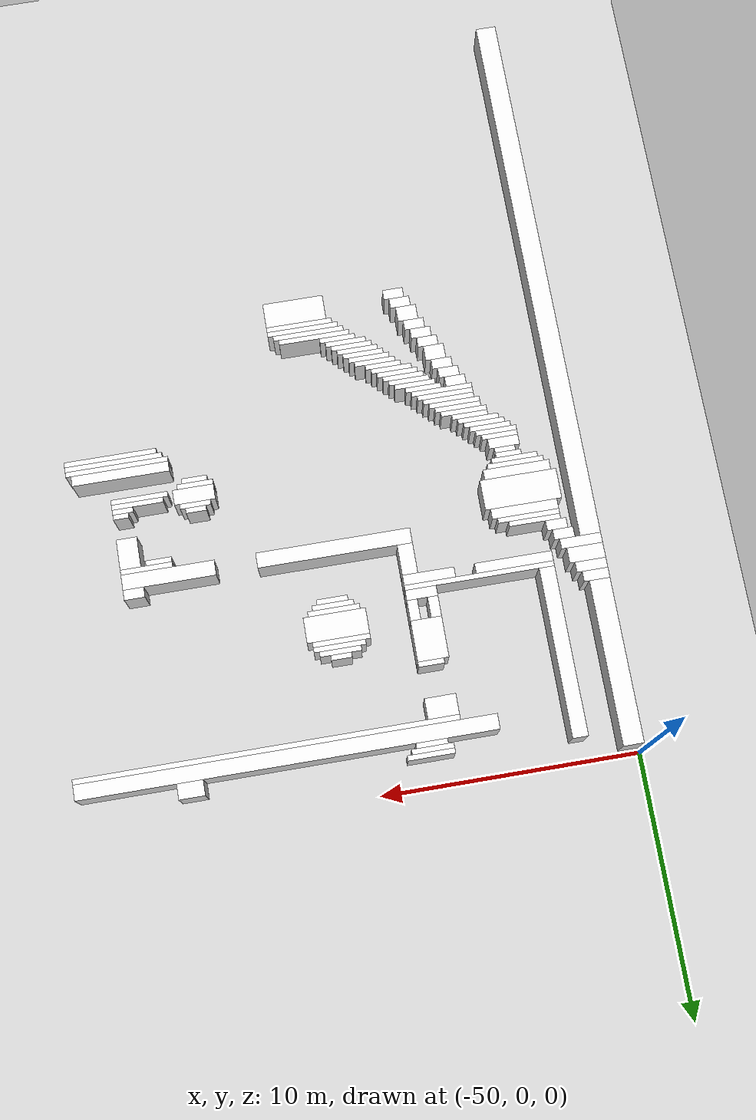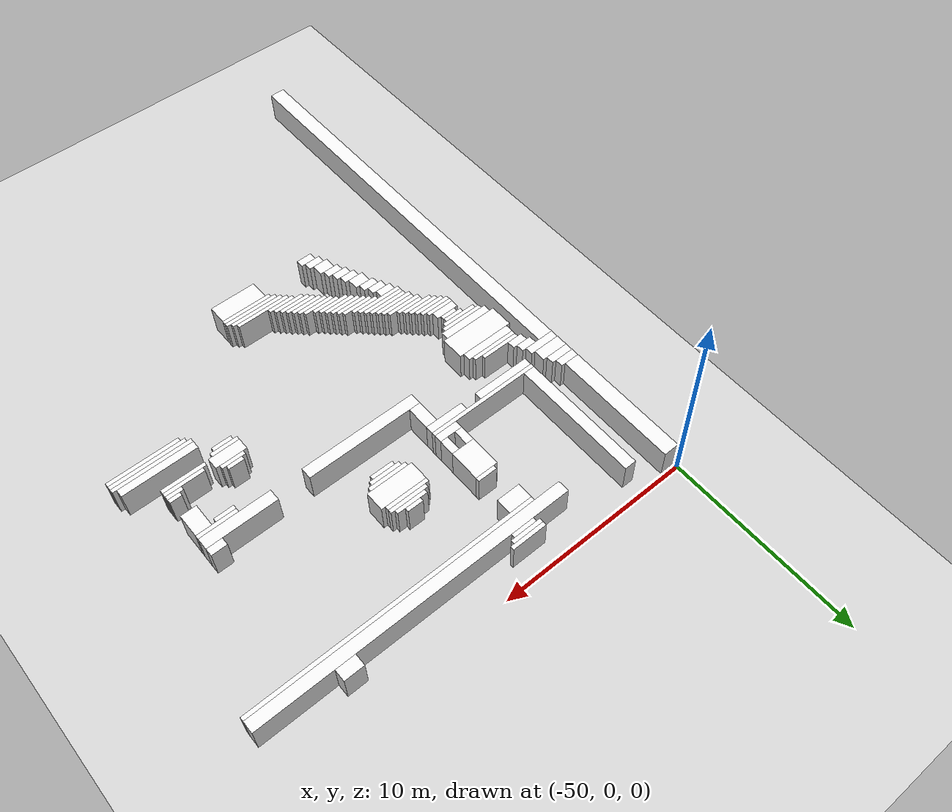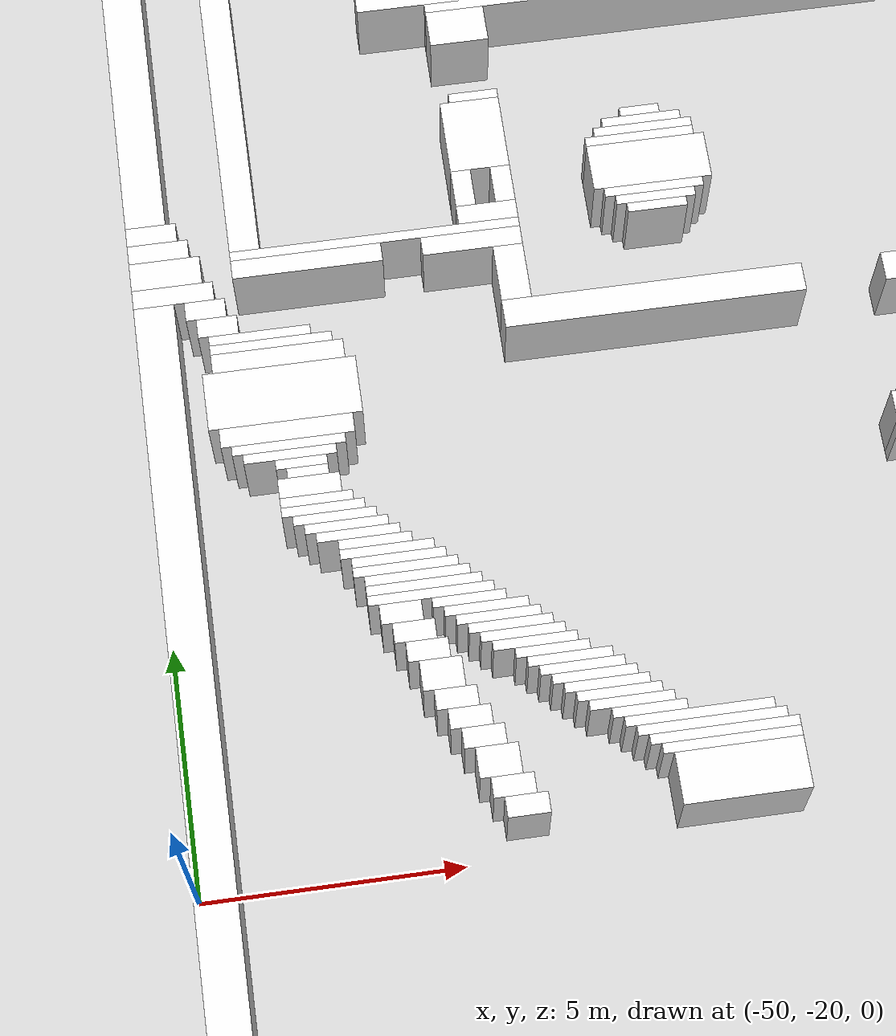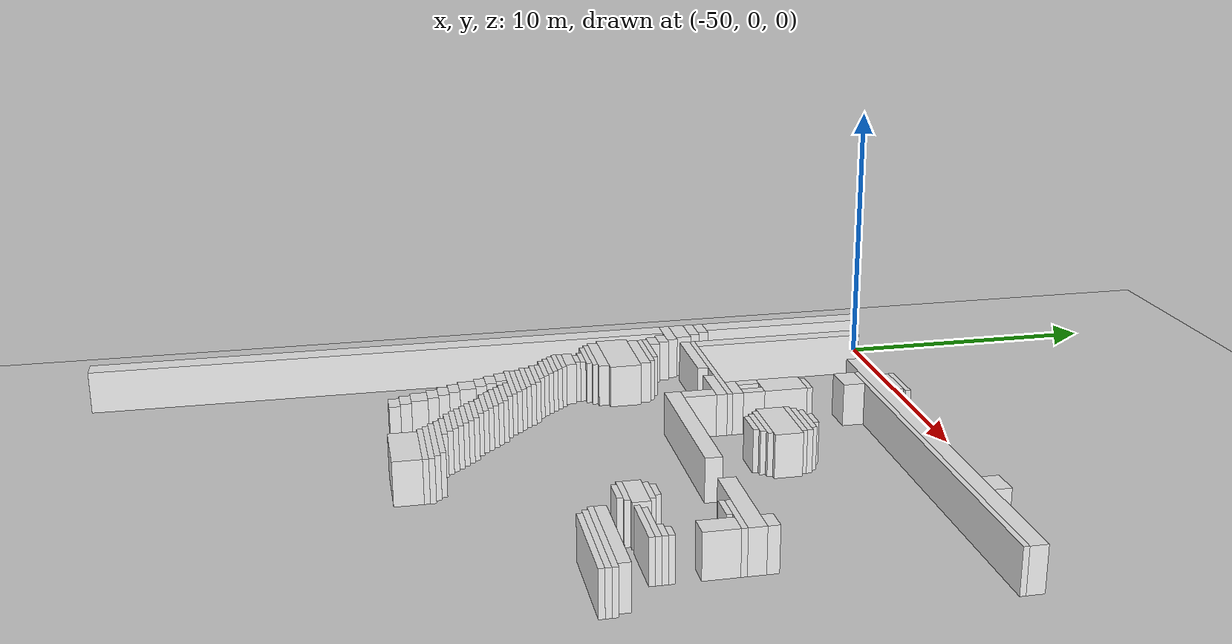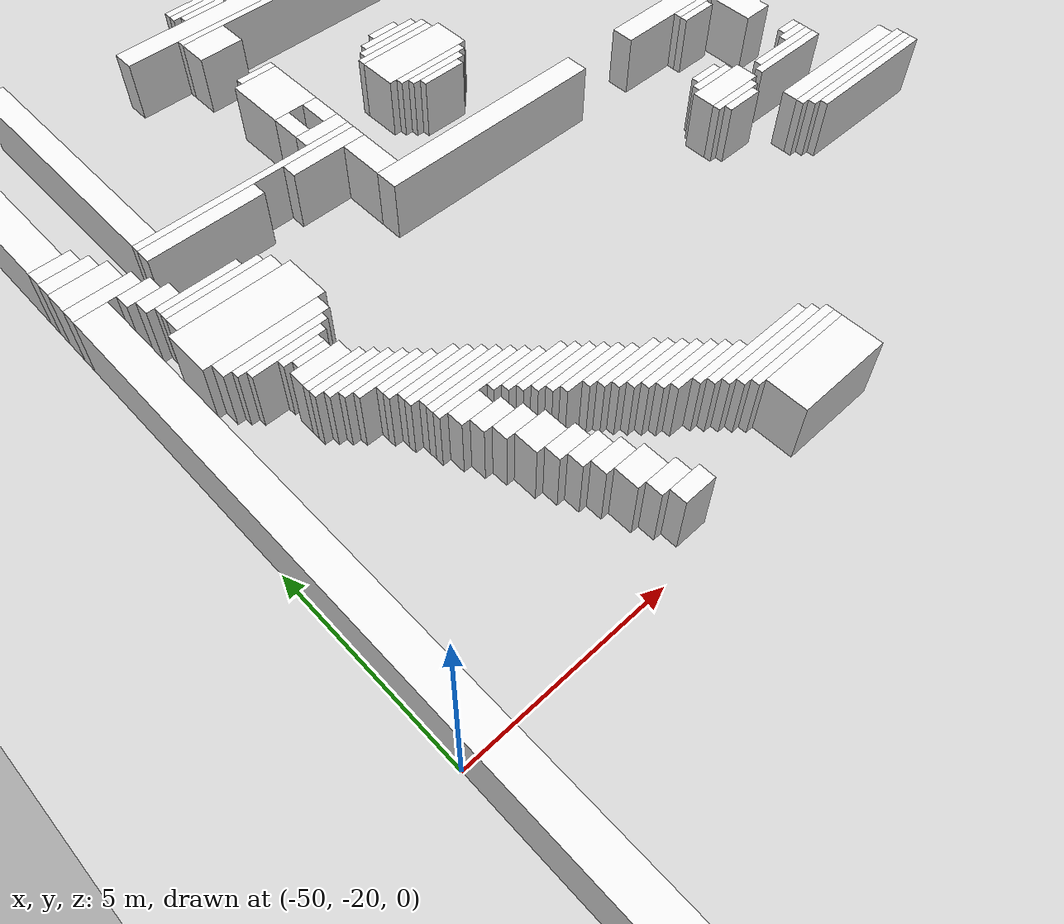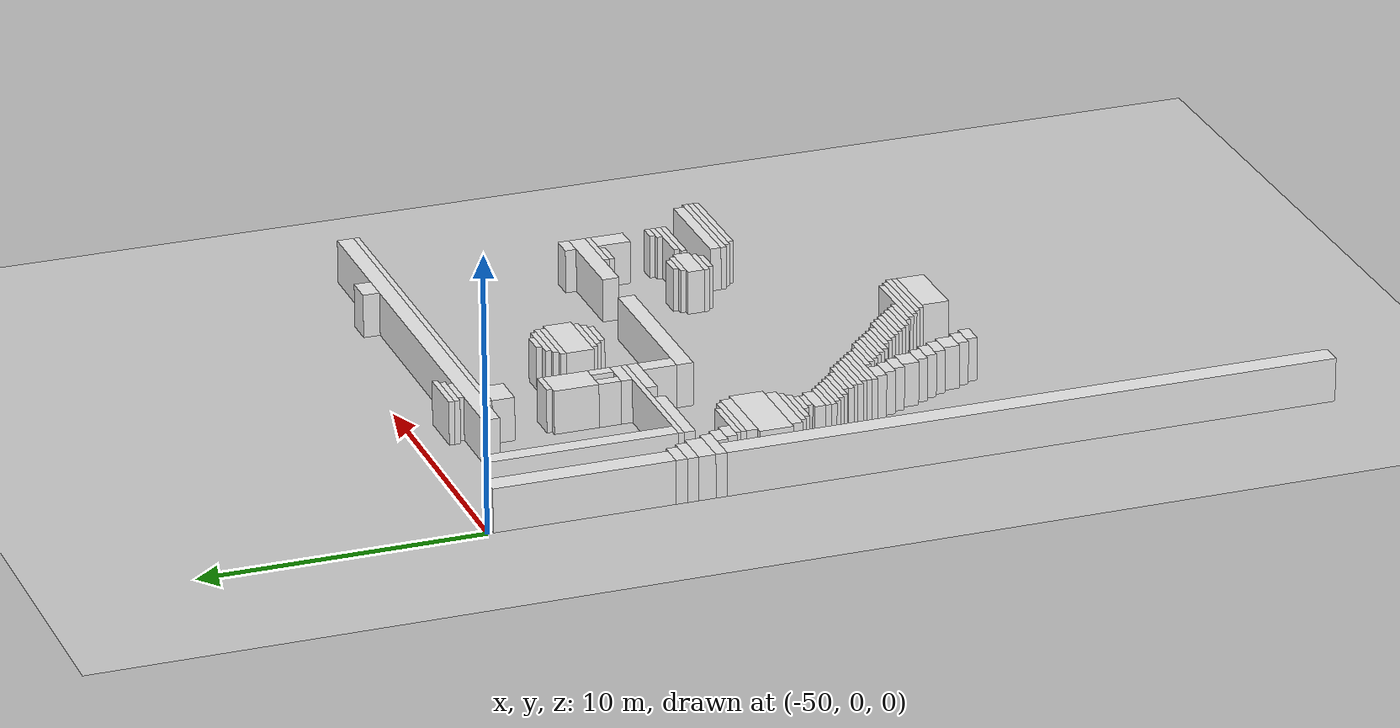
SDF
<sdf version="1.7">
 <world name="default">
  <model name="ground_plane">
   <static>1</static>
   <link name="link">
    <collision name="collision">
     <geometry><plane><normal>0 0 1</normal><size>120 120</size></plane></geometry>
    </collision>
    <visual name="visual">
     <geometry><plane><normal>0 0 1</normal><size>120 120</size></plane></geometry>
     <material>
      <script><uri>file://media/materials/scripts/gazebo.material</uri><name>Gazebo/Grey</name></script>
     </material>
    </visual>
   </link>
  </model>
  <model name="random_complex_03_model">
   <static>1</static>
   <link name="obs_1675">
    <pose>-42.1000 -1.1000 0.8000 0 0 0</pose>
    <collision name="obs_1675_col"><geometry><box><size>1.8000 0.2000 1.6000</size></box></geometry></collision>
    <visual name="obs_1675_vis">
     <geometry><box><size>1.8000 0.2000 1.6000</size></box></geometry>
     <material>
      <script><uri>file://media/materials/scripts/gazebo.material</uri><name>Gazebo/White</name></script>
     </material>
    </visual>
   </link>
   <link name="obs_1685">
    <pose>-42.2000 -1.3000 0.8000 0 0 0</pose>
    <collision name="obs_1685_col"><geometry><box><size>1.6000 0.2000 1.6000</size></box></geometry></collision>
    <visual name="obs_1685_vis">
     <geometry><box><size>1.6000 0.2000 1.6000</size></box></geometry>
     <material>
      <script><uri>file://media/materials/scripts/gazebo.material</uri><name>Gazebo/White</name></script>
     </material>
    </visual>
   </link>
   <link name="obs_1694">
    <pose>-33.1000 -1.3000 0.8000 0 0 0</pose>
    <collision name="obs_1694_col"><geometry><box><size>1.0000 0.6000 1.6000</size></box></geometry></collision>
    <visual name="obs_1694_vis">
     <geometry><box><size>1.0000 0.6000 1.6000</size></box></geometry>
     <material>
      <script><uri>file://media/materials/scripts/gazebo.material</uri><name>Gazebo/White</name></script>
     </material>
    </visual>
   </link>
   <link name="obs_1697">
    <pose>-42.2000 -1.5000 0.8000 0 0 0</pose>
    <collision name="obs_1697_col"><geometry><box><size>1.2000 0.2000 1.6000</size></box></geometry></collision>
    <visual name="obs_1697_vis">
     <geometry><box><size>1.2000 0.2000 1.6000</size></box></geometry>
     <material>
      <script><uri>file://media/materials/scripts/gazebo.material</uri><name>Gazebo/White</name></script>
     </material>
    </visual>
   </link>
   <link name="obs_1722">
    <pose>-36.8000 -1.9000 0.8000 0 0 0</pose>
    <collision name="obs_1722_col"><geometry><box><size>16.0000 0.6000 1.6000</size></box></geometry></collision>
    <visual name="obs_1722_vis">
     <geometry><box><size>16.0000 0.6000 1.6000</size></box></geometry>
     <material>
      <script><uri>file://media/materials/scripts/gazebo.material</uri><name>Gazebo/White</name></script>
     </material>
    </visual>
   </link>
   <link name="obs_1733">
    <pose>-36.1000 -2.3000 0.8000 0 0 0</pose>
    <collision name="obs_1733_col"><geometry><box><size>14.6000 0.2000 1.6000</size></box></geometry></collision>
    <visual name="obs_1733_vis">
     <geometry><box><size>14.6000 0.2000 1.6000</size></box></geometry>
     <material>
      <script><uri>file://media/materials/scripts/gazebo.material</uri><name>Gazebo/White</name></script>
     </material>
    </visual>
   </link>
   <link name="obs_1763">
    <pose>-42.8000 -2.8000 0.8000 0 0 0</pose>
    <collision name="obs_1763_col"><geometry><box><size>1.2000 0.8000 1.6000</size></box></geometry></collision>
    <visual name="obs_1763_vis">
     <geometry><box><size>1.2000 0.8000 1.6000</size></box></geometry>
     <material>
      <script><uri>file://media/materials/scripts/gazebo.material</uri><name>Gazebo/White</name></script>
     </material>
    </visual>
   </link>
   <link name="obs_1791">
    <pose>-42.7000 -4.5000 0.8000 0 0 0</pose>
    <collision name="obs_1791_col"><geometry><box><size>1.0000 0.2000 1.6000</size></box></geometry></collision>
    <visual name="obs_1791_vis">
     <geometry><box><size>1.0000 0.2000 1.6000</size></box></geometry>
     <material>
      <script><uri>file://media/materials/scripts/gazebo.material</uri><name>Gazebo/White</name></script>
     </material>
    </visual>
   </link>
   <link name="obs_1819">
    <pose>-39.4000 -5.3000 0.8000 0 0 0</pose>
    <collision name="obs_1819_col"><geometry><box><size>0.8000 0.2000 1.6000</size></box></geometry></collision>
    <visual name="obs_1819_vis">
     <geometry><box><size>0.8000 0.2000 1.6000</size></box></geometry>
     <material>
      <script><uri>file://media/materials/scripts/gazebo.material</uri><name>Gazebo/White</name></script>
     </material>
    </visual>
   </link>
   <link name="obs_1821">
    <pose>-39.4000 -5.5000 0.8000 0 0 0</pose>
    <collision name="obs_1821_col"><geometry><box><size>1.6000 0.2000 1.6000</size></box></geometry></collision>
    <visual name="obs_1821_vis">
     <geometry><box><size>1.6000 0.2000 1.6000</size></box></geometry>
     <material>
      <script><uri>file://media/materials/scripts/gazebo.material</uri><name>Gazebo/White</name></script>
     </material>
    </visual>
   </link>
   <link name="obs_1826">
    <pose>-39.4000 -5.7000 0.8000 0 0 0</pose>
    <collision name="obs_1826_col"><geometry><box><size>2.0000 0.2000 1.6000</size></box></geometry></collision>
    <visual name="obs_1826_vis">
     <geometry><box><size>2.0000 0.2000 1.6000</size></box></geometry>
     <material>
      <script><uri>file://media/materials/scripts/gazebo.material</uri><name>Gazebo/White</name></script>
     </material>
    </visual>
   </link>
   <link name="obs_1831">
    <pose>-39.5000 -5.9000 0.8000 0 0 0</pose>
    <collision name="obs_1831_col"><geometry><box><size>2.2000 0.2000 1.6000</size></box></geometry></collision>
    <visual name="obs_1831_vis">
     <geometry><box><size>2.2000 0.2000 1.6000</size></box></geometry>
     <material>
      <script><uri>file://media/materials/scripts/gazebo.material</uri><name>Gazebo/White</name></script>
     </material>
    </visual>
   </link>
   <link name="obs_1834">
    <pose>-42.8000 -5.4000 0.8000 0 0 0</pose>
    <collision name="obs_1834_col"><geometry><box><size>1.2000 1.6000 1.6000</size></box></geometry></collision>
    <visual name="obs_1834_vis">
     <geometry><box><size>1.2000 1.6000 1.6000</size></box></geometry>
     <material>
      <script><uri>file://media/materials/scripts/gazebo.material</uri><name>Gazebo/White</name></script>
     </material>
    </visual>
   </link>
   <link name="obs_1840">
    <pose>-49.6000 -3.4000 0.8000 0 0 0</pose>
    <collision name="obs_1840_col"><geometry><box><size>0.8000 6.4000 1.6000</size></box></geometry></collision>
    <visual name="obs_1840_vis">
     <geometry><box><size>0.8000 6.4000 1.6000</size></box></geometry>
     <material>
      <script><uri>file://media/materials/scripts/gazebo.material</uri><name>Gazebo/White</name></script>
     </material>
    </visual>
   </link>
   <link name="obs_1850">
    <pose>-39.4000 -6.5000 0.8000 0 0 0</pose>
    <collision name="obs_1850_col"><geometry><box><size>2.4000 1.0000 1.6000</size></box></geometry></collision>
    <visual name="obs_1850_vis">
     <geometry><box><size>2.4000 1.0000 1.6000</size></box></geometry>
     <material>
      <script><uri>file://media/materials/scripts/gazebo.material</uri><name>Gazebo/White</name></script>
     </material>
    </visual>
   </link>
   <link name="obs_1851">
    <pose>-43.2000 -6.6000 0.8000 0 0 0</pose>
    <collision name="obs_1851_col"><geometry><box><size>0.4000 0.8000 1.6000</size></box></geometry></collision>
    <visual name="obs_1851_vis">
     <geometry><box><size>0.4000 0.8000 1.6000</size></box></geometry>
     <material>
      <script><uri>file://media/materials/scripts/gazebo.material</uri><name>Gazebo/White</name></script>
     </material>
    </visual>
   </link>
   <link name="obs_1852">
    <pose>-42.4000 -6.6000 0.8000 0 0 0</pose>
    <collision name="obs_1852_col"><geometry><box><size>0.4000 0.8000 1.6000</size></box></geometry></collision>
    <visual name="obs_1852_vis">
     <geometry><box><size>0.4000 0.8000 1.6000</size></box></geometry>
     <material>
      <script><uri>file://media/materials/scripts/gazebo.material</uri><name>Gazebo/White</name></script>
     </material>
    </visual>
   </link>
   <link name="obs_1853">
    <pose>-49.5000 -6.8000 0.8000 0 0 0</pose>
    <collision name="obs_1853_col"><geometry><box><size>1.0000 0.4000 1.6000</size></box></geometry></collision>
    <visual name="obs_1853_vis">
     <geometry><box><size>1.0000 0.4000 1.6000</size></box></geometry>
     <material>
      <script><uri>file://media/materials/scripts/gazebo.material</uri><name>Gazebo/White</name></script>
     </material>
    </visual>
   </link>
   <link name="obs_1859">
    <pose>-39.4000 -7.1000 0.8000 0 0 0</pose>
    <collision name="obs_1859_col"><geometry><box><size>2.0000 0.2000 1.6000</size></box></geometry></collision>
    <visual name="obs_1859_vis">
     <geometry><box><size>2.0000 0.2000 1.6000</size></box></geometry>
     <material>
      <script><uri>file://media/materials/scripts/gazebo.material</uri><name>Gazebo/White</name></script>
     </material>
    </visual>
   </link>
   <link name="obs_1861">
    <pose>-47.7000 -4.1000 0.8000 0 0 0</pose>
    <collision name="obs_1861_col"><geometry><box><size>0.6000 6.6000 1.6000</size></box></geometry></collision>
    <visual name="obs_1861_vis">
     <geometry><box><size>0.6000 6.6000 1.6000</size></box></geometry>
     <material>
      <script><uri>file://media/materials/scripts/gazebo.material</uri><name>Gazebo/White</name></script>
     </material>
    </visual>
   </link>
   <link name="obs_1862">
    <pose>-49.4000 -7.2000 0.8000 0 0 0</pose>
    <collision name="obs_1862_col"><geometry><box><size>1.2000 0.4000 1.6000</size></box></geometry></collision>
    <visual name="obs_1862_vis">
     <geometry><box><size>1.2000 0.4000 1.6000</size></box></geometry>
     <material>
      <script><uri>file://media/materials/scripts/gazebo.material</uri><name>Gazebo/White</name></script>
     </material>
    </visual>
   </link>
   <link name="obs_1863">
    <pose>-42.8000 -7.2000 0.8000 0 0 0</pose>
    <collision name="obs_1863_col"><geometry><box><size>1.2000 0.4000 1.6000</size></box></geometry></collision>
    <visual name="obs_1863_vis">
     <geometry><box><size>1.2000 0.4000 1.6000</size></box></geometry>
     <material>
      <script><uri>file://media/materials/scripts/gazebo.material</uri><name>Gazebo/White</name></script>
     </material>
    </visual>
   </link>
   <link name="obs_1867">
    <pose>-39.4000 -7.3000 0.8000 0 0 0</pose>
    <collision name="obs_1867_col"><geometry><box><size>1.6000 0.2000 1.6000</size></box></geometry></collision>
    <visual name="obs_1867_vis">
     <geometry><box><size>1.6000 0.2000 1.6000</size></box></geometry>
     <material>
      <script><uri>file://media/materials/scripts/gazebo.material</uri><name>Gazebo/White</name></script>
     </material>
    </visual>
   </link>
   <link name="obs_1870">
    <pose>-45.1000 -7.5000 0.8000 0 0 0</pose>
    <collision name="obs_1870_col"><geometry><box><size>5.8000 0.2000 1.6000</size></box></geometry></collision>
    <visual name="obs_1870_vis">
     <geometry><box><size>5.8000 0.2000 1.6000</size></box></geometry>
     <material>
      <script><uri>file://media/materials/scripts/gazebo.material</uri><name>Gazebo/White</name></script>
     </material>
    </visual>
   </link>
   <link name="obs_1871">
    <pose>-39.4000 -7.5000 0.8000 0 0 0</pose>
    <collision name="obs_1871_col"><geometry><box><size>1.2000 0.2000 1.6000</size></box></geometry></collision>
    <visual name="obs_1871_vis">
     <geometry><box><size>1.2000 0.2000 1.6000</size></box></geometry>
     <material>
      <script><uri>file://media/materials/scripts/gazebo.material</uri><name>Gazebo/White</name></script>
     </material>
    </visual>
   </link>
   <link name="obs_1883">
    <pose>-49.3000 -7.7000 0.8000 0 0 0</pose>
    <collision name="obs_1883_col"><geometry><box><size>1.4000 0.6000 1.6000</size></box></geometry></collision>
    <visual name="obs_1883_vis">
     <geometry><box><size>1.4000 0.6000 1.6000</size></box></geometry>
     <material>
      <script><uri>file://media/materials/scripts/gazebo.material</uri><name>Gazebo/White</name></script>
     </material>
    </visual>
   </link>
   <link name="obs_1884">
    <pose>-46.5000 -7.8000 0.8000 0 0 0</pose>
    <collision name="obs_1884_col"><geometry><box><size>3.0000 0.4000 1.6000</size></box></geometry></collision>
    <visual name="obs_1884_vis">
     <geometry><box><size>3.0000 0.4000 1.6000</size></box></geometry>
     <material>
      <script><uri>file://media/materials/scripts/gazebo.material</uri><name>Gazebo/White</name></script>
     </material>
    </visual>
   </link>
   <link name="obs_1885">
    <pose>-43.2000 -7.8000 0.8000 0 0 0</pose>
    <collision name="obs_1885_col"><geometry><box><size>2.0000 0.4000 1.6000</size></box></geometry></collision>
    <visual name="obs_1885_vis">
     <geometry><box><size>2.0000 0.4000 1.6000</size></box></geometry>
     <material>
      <script><uri>file://media/materials/scripts/gazebo.material</uri><name>Gazebo/White</name></script>
     </material>
    </visual>
   </link>
   <link name="obs_1896">
    <pose>-49.2000 -8.2000 0.8000 0 0 0</pose>
    <collision name="obs_1896_col"><geometry><box><size>1.6000 0.4000 1.6000</size></box></geometry></collision>
    <visual name="obs_1896_vis">
     <geometry><box><size>1.6000 0.4000 1.6000</size></box></geometry>
     <material>
      <script><uri>file://media/materials/scripts/gazebo.material</uri><name>Gazebo/White</name></script>
     </material>
    </visual>
   </link>
   <link name="obs_1909">
    <pose>-48.6000 -8.6000 0.8000 0 0 0</pose>
    <collision name="obs_1909_col"><geometry><box><size>0.8000 0.4000 1.6000</size></box></geometry></collision>
    <visual name="obs_1909_vis">
     <geometry><box><size>0.8000 0.4000 1.6000</size></box></geometry>
     <material>
      <script><uri>file://media/materials/scripts/gazebo.material</uri><name>Gazebo/White</name></script>
     </material>
    </visual>
   </link>
   <link name="obs_1920">
    <pose>-42.5000 -8.6000 0.8000 0 0 0</pose>
    <collision name="obs_1920_col"><geometry><box><size>0.6000 1.2000 1.6000</size></box></geometry></collision>
    <visual name="obs_1920_vis">
     <geometry><box><size>0.6000 1.2000 1.6000</size></box></geometry>
     <material>
      <script><uri>file://media/materials/scripts/gazebo.material</uri><name>Gazebo/White</name></script>
     </material>
    </visual>
   </link>
   <link name="obs_1921">
    <pose>-48.4000 -9.0000 0.8000 0 0 0</pose>
    <collision name="obs_1921_col"><geometry><box><size>0.8000 0.4000 1.6000</size></box></geometry></collision>
    <visual name="obs_1921_vis">
     <geometry><box><size>0.8000 0.4000 1.6000</size></box></geometry>
     <material>
      <script><uri>file://media/materials/scripts/gazebo.material</uri><name>Gazebo/White</name></script>
     </material>
    </visual>
   </link>
   <link name="obs_1922">
    <pose>-32.0000 -9.0000 0.8000 0 0 0</pose>
    <collision name="obs_1922_col"><geometry><box><size>0.8000 0.4000 1.6000</size></box></geometry></collision>
    <visual name="obs_1922_vis">
     <geometry><box><size>0.8000 0.4000 1.6000</size></box></geometry>
     <material>
      <script><uri>file://media/materials/scripts/gazebo.material</uri><name>Gazebo/White</name></script>
     </material>
    </visual>
   </link>
   <link name="obs_1932">
    <pose>-47.6000 -9.3000 0.8000 0 0 0</pose>
    <collision name="obs_1932_col"><geometry><box><size>2.0000 0.2000 1.6000</size></box></geometry></collision>
    <visual name="obs_1932_vis">
     <geometry><box><size>2.0000 0.2000 1.6000</size></box></geometry>
     <material>
      <script><uri>file://media/materials/scripts/gazebo.material</uri><name>Gazebo/White</name></script>
     </material>
    </visual>
   </link>
   <link name="obs_1940">
    <pose>-47.4000 -9.5000 0.8000 0 0 0</pose>
    <collision name="obs_1940_col"><geometry><box><size>2.4000 0.2000 1.6000</size></box></geometry></collision>
    <visual name="obs_1940_vis">
     <geometry><box><size>2.4000 0.2000 1.6000</size></box></geometry>
     <material>
      <script><uri>file://media/materials/scripts/gazebo.material</uri><name>Gazebo/White</name></script>
     </material>
    </visual>
   </link>
   <link name="obs_1946">
    <pose>-39.8000 -9.5000 0.8000 0 0 0</pose>
    <collision name="obs_1946_col"><geometry><box><size>6.0000 0.6000 1.6000</size></box></geometry></collision>
    <visual name="obs_1946_vis">
     <geometry><box><size>6.0000 0.6000 1.6000</size></box></geometry>
     <material>
      <script><uri>file://media/materials/scripts/gazebo.material</uri><name>Gazebo/White</name></script>
     </material>
    </visual>
   </link>
   <link name="obs_1947">
    <pose>-33.4000 -9.5000 0.8000 0 0 0</pose>
    <collision name="obs_1947_col"><geometry><box><size>3.6000 0.6000 1.6000</size></box></geometry></collision>
    <visual name="obs_1947_vis">
     <geometry><box><size>3.6000 0.6000 1.6000</size></box></geometry>
     <material>
      <script><uri>file://media/materials/scripts/gazebo.material</uri><name>Gazebo/White</name></script>
     </material>
    </visual>
   </link>
   <link name="obs_1953">
    <pose>-47.3000 -9.8000 0.8000 0 0 0</pose>
    <collision name="obs_1953_col"><geometry><box><size>2.6000 0.4000 1.6000</size></box></geometry></collision>
    <visual name="obs_1953_vis">
     <geometry><box><size>2.6000 0.4000 1.6000</size></box></geometry>
     <material>
      <script><uri>file://media/materials/scripts/gazebo.material</uri><name>Gazebo/White</name></script>
     </material>
    </visual>
   </link>
   <link name="obs_1955">
    <pose>-32.6000 -9.9000 0.8000 0 0 0</pose>
    <collision name="obs_1955_col"><geometry><box><size>2.0000 0.2000 1.6000</size></box></geometry></collision>
    <visual name="obs_1955_vis">
     <geometry><box><size>2.0000 0.2000 1.6000</size></box></geometry>
     <material>
      <script><uri>file://media/materials/scripts/gazebo.material</uri><name>Gazebo/White</name></script>
     </material>
    </visual>
   </link>
   <link name="obs_1965">
    <pose>-33.1000 -10.1000 0.8000 0 0 0</pose>
    <collision name="obs_1965_col"><geometry><box><size>1.0000 0.2000 1.6000</size></box></geometry></collision>
    <visual name="obs_1965_vis">
     <geometry><box><size>1.0000 0.2000 1.6000</size></box></geometry>
     <material>
      <script><uri>file://media/materials/scripts/gazebo.material</uri><name>Gazebo/White</name></script>
     </material>
    </visual>
   </link>
   <link name="obs_1983">
    <pose>-47.3000 -10.6000 0.8000 0 0 0</pose>
    <collision name="obs_1983_col"><geometry><box><size>3.0000 1.2000 1.6000</size></box></geometry></collision>
    <visual name="obs_1983_vis">
     <geometry><box><size>3.0000 1.2000 1.6000</size></box></geometry>
     <material>
      <script><uri>file://media/materials/scripts/gazebo.material</uri><name>Gazebo/White</name></script>
     </material>
    </visual>
   </link>
   <link name="obs_1984">
    <pose>-32.0000 -10.6000 0.8000 0 0 0</pose>
    <collision name="obs_1984_col"><geometry><box><size>0.8000 1.2000 1.6000</size></box></geometry></collision>
    <visual name="obs_1984_vis">
     <geometry><box><size>0.8000 1.2000 1.6000</size></box></geometry>
     <material>
      <script><uri>file://media/materials/scripts/gazebo.material</uri><name>Gazebo/White</name></script>
     </material>
    </visual>
   </link>
   <link name="obs_1988">
    <pose>-47.3000 -11.4000 0.8000 0 0 0</pose>
    <collision name="obs_1988_col"><geometry><box><size>2.6000 0.4000 1.6000</size></box></geometry></collision>
    <visual name="obs_1988_vis">
     <geometry><box><size>2.6000 0.4000 1.6000</size></box></geometry>
     <material>
      <script><uri>file://media/materials/scripts/gazebo.material</uri><name>Gazebo/White</name></script>
     </material>
    </visual>
   </link>
   <link name="obs_1990">
    <pose>-47.3000 -11.7000 0.8000 0 0 0</pose>
    <collision name="obs_1990_col"><geometry><box><size>2.2000 0.2000 1.6000</size></box></geometry></collision>
    <visual name="obs_1990_vis">
     <geometry><box><size>2.2000 0.2000 1.6000</size></box></geometry>
     <material>
      <script><uri>file://media/materials/scripts/gazebo.material</uri><name>Gazebo/White</name></script>
     </material>
    </visual>
   </link>
   <link name="obs_2000">
    <pose>-47.3000 -11.9000 0.8000 0 0 0</pose>
    <collision name="obs_2000_col"><geometry><box><size>1.8000 0.2000 1.6000</size></box></geometry></collision>
    <visual name="obs_2000_vis">
     <geometry><box><size>1.8000 0.2000 1.6000</size></box></geometry>
     <material>
      <script><uri>file://media/materials/scripts/gazebo.material</uri><name>Gazebo/White</name></script>
     </material>
    </visual>
   </link>
   <link name="obs_2001">
    <pose>-34.8000 -11.9000 0.8000 0 0 0</pose>
    <collision name="obs_2001_col"><geometry><box><size>0.8000 0.2000 1.6000</size></box></geometry></collision>
    <visual name="obs_2001_vis">
     <geometry><box><size>0.8000 0.2000 1.6000</size></box></geometry>
     <material>
      <script><uri>file://media/materials/scripts/gazebo.material</uri><name>Gazebo/White</name></script>
     </material>
    </visual>
   </link>
   <link name="obs_2007">
    <pose>-47.1000 -12.1000 0.8000 0 0 0</pose>
    <collision name="obs_2007_col"><geometry><box><size>1.0000 0.2000 1.6000</size></box></geometry></collision>
    <visual name="obs_2007_vis">
     <geometry><box><size>1.0000 0.2000 1.6000</size></box></geometry>
     <material>
      <script><uri>file://media/materials/scripts/gazebo.material</uri><name>Gazebo/White</name></script>
     </material>
    </visual>
   </link>
   <link name="obs_2008">
    <pose>-34.8000 -12.1000 0.8000 0 0 0</pose>
    <collision name="obs_2008_col"><geometry><box><size>1.2000 0.2000 1.6000</size></box></geometry></collision>
    <visual name="obs_2008_vis">
     <geometry><box><size>1.2000 0.2000 1.6000</size></box></geometry>
     <material>
      <script><uri>file://media/materials/scripts/gazebo.material</uri><name>Gazebo/White</name></script>
     </material>
    </visual>
   </link>
   <link name="obs_2009">
    <pose>-31.9000 -12.1000 0.8000 0 0 0</pose>
    <collision name="obs_2009_col"><geometry><box><size>0.6000 0.2000 1.6000</size></box></geometry></collision>
    <visual name="obs_2009_vis">
     <geometry><box><size>0.6000 0.2000 1.6000</size></box></geometry>
     <material>
      <script><uri>file://media/materials/scripts/gazebo.material</uri><name>Gazebo/White</name></script>
     </material>
    </visual>
   </link>
   <link name="obs_2016">
    <pose>-47.0000 -12.3000 0.8000 0 0 0</pose>
    <collision name="obs_2016_col"><geometry><box><size>0.8000 0.2000 1.6000</size></box></geometry></collision>
    <visual name="obs_2016_vis">
     <geometry><box><size>0.8000 0.2000 1.6000</size></box></geometry>
     <material>
      <script><uri>file://media/materials/scripts/gazebo.material</uri><name>Gazebo/White</name></script>
     </material>
    </visual>
   </link>
   <link name="obs_2017">
    <pose>-32.0000 -12.3000 0.8000 0 0 0</pose>
    <collision name="obs_2017_col"><geometry><box><size>0.8000 0.2000 1.6000</size></box></geometry></collision>
    <visual name="obs_2017_vis">
     <geometry><box><size>0.8000 0.2000 1.6000</size></box></geometry>
     <material>
      <script><uri>file://media/materials/scripts/gazebo.material</uri><name>Gazebo/White</name></script>
     </material>
    </visual>
   </link>
   <link name="obs_2025">
    <pose>-32.6000 -12.5000 0.8000 0 0 0</pose>
    <collision name="obs_2025_col"><geometry><box><size>2.0000 0.2000 1.6000</size></box></geometry></collision>
    <visual name="obs_2025_vis">
     <geometry><box><size>2.0000 0.2000 1.6000</size></box></geometry>
     <material>
      <script><uri>file://media/materials/scripts/gazebo.material</uri><name>Gazebo/White</name></script>
     </material>
    </visual>
   </link>
   <link name="obs_2033">
    <pose>-34.8000 -12.5000 0.8000 0 0 0</pose>
    <collision name="obs_2033_col"><geometry><box><size>1.6000 0.6000 1.6000</size></box></geometry></collision>
    <visual name="obs_2033_vis">
     <geometry><box><size>1.6000 0.6000 1.6000</size></box></geometry>
     <material>
      <script><uri>file://media/materials/scripts/gazebo.material</uri><name>Gazebo/White</name></script>
     </material>
    </visual>
   </link>
   <link name="obs_2034">
    <pose>-47.0000 -12.6000 0.8000 0 0 0</pose>
    <collision name="obs_2034_col"><geometry><box><size>1.2000 0.4000 1.6000</size></box></geometry></collision>
    <visual name="obs_2034_vis">
     <geometry><box><size>1.2000 0.4000 1.6000</size></box></geometry>
     <material>
      <script><uri>file://media/materials/scripts/gazebo.material</uri><name>Gazebo/White</name></script>
     </material>
    </visual>
   </link>
   <link name="obs_2036">
    <pose>-32.7000 -12.7000 0.8000 0 0 0</pose>
    <collision name="obs_2036_col"><geometry><box><size>2.2000 0.2000 1.6000</size></box></geometry></collision>
    <visual name="obs_2036_vis">
     <geometry><box><size>2.2000 0.2000 1.6000</size></box></geometry>
     <material>
      <script><uri>file://media/materials/scripts/gazebo.material</uri><name>Gazebo/White</name></script>
     </material>
    </visual>
   </link>
   <link name="obs_2044">
    <pose>-46.9000 -12.9000 0.8000 0 0 0</pose>
    <collision name="obs_2044_col"><geometry><box><size>1.4000 0.2000 1.6000</size></box></geometry></collision>
    <visual name="obs_2044_vis">
     <geometry><box><size>1.4000 0.2000 1.6000</size></box></geometry>
     <material>
      <script><uri>file://media/materials/scripts/gazebo.material</uri><name>Gazebo/White</name></script>
     </material>
    </visual>
   </link>
   <link name="obs_2045">
    <pose>-34.9000 -12.9000 0.8000 0 0 0</pose>
    <collision name="obs_2045_col"><geometry><box><size>1.4000 0.2000 1.6000</size></box></geometry></collision>
    <visual name="obs_2045_vis">
     <geometry><box><size>1.4000 0.2000 1.6000</size></box></geometry>
     <material>
      <script><uri>file://media/materials/scripts/gazebo.material</uri><name>Gazebo/White</name></script>
     </material>
    </visual>
   </link>
   <link name="obs_2054">
    <pose>-46.8000 -13.1000 0.8000 0 0 0</pose>
    <collision name="obs_2054_col"><geometry><box><size>1.6000 0.2000 1.6000</size></box></geometry></collision>
    <visual name="obs_2054_vis">
     <geometry><box><size>1.6000 0.2000 1.6000</size></box></geometry>
     <material>
      <script><uri>file://media/materials/scripts/gazebo.material</uri><name>Gazebo/White</name></script>
     </material>
    </visual>
   </link>
   <link name="obs_2055">
    <pose>-34.9000 -13.1000 0.8000 0 0 0</pose>
    <collision name="obs_2055_col"><geometry><box><size>1.0000 0.2000 1.6000</size></box></geometry></collision>
    <visual name="obs_2055_vis">
     <geometry><box><size>1.0000 0.2000 1.6000</size></box></geometry>
     <material>
      <script><uri>file://media/materials/scripts/gazebo.material</uri><name>Gazebo/White</name></script>
     </material>
    </visual>
   </link>
   <link name="obs_2060">
    <pose>-46.6000 -13.3000 0.8000 0 0 0</pose>
    <collision name="obs_2060_col"><geometry><box><size>1.6000 0.2000 1.6000</size></box></geometry></collision>
    <visual name="obs_2060_vis">
     <geometry><box><size>1.6000 0.2000 1.6000</size></box></geometry>
     <material>
      <script><uri>file://media/materials/scripts/gazebo.material</uri><name>Gazebo/White</name></script>
     </material>
    </visual>
   </link>
   <link name="obs_2067">
    <pose>-46.4000 -13.5000 0.8000 0 0 0</pose>
    <collision name="obs_2067_col"><geometry><box><size>1.6000 0.2000 1.6000</size></box></geometry></collision>
    <visual name="obs_2067_vis">
     <geometry><box><size>1.6000 0.2000 1.6000</size></box></geometry>
     <material>
      <script><uri>file://media/materials/scripts/gazebo.material</uri><name>Gazebo/White</name></script>
     </material>
    </visual>
   </link>
   <link name="obs_2072">
    <pose>-46.2000 -13.7000 0.8000 0 0 0</pose>
    <collision name="obs_2072_col"><geometry><box><size>1.6000 0.2000 1.6000</size></box></geometry></collision>
    <visual name="obs_2072_vis">
     <geometry><box><size>1.6000 0.2000 1.6000</size></box></geometry>
     <material>
      <script><uri>file://media/materials/scripts/gazebo.material</uri><name>Gazebo/White</name></script>
     </material>
    </visual>
   </link>
   <link name="obs_2078">
    <pose>-32.1000 -13.8000 0.8000 0 0 0</pose>
    <collision name="obs_2078_col"><geometry><box><size>3.8000 0.4000 1.6000</size></box></geometry></collision>
    <visual name="obs_2078_vis">
     <geometry><box><size>3.8000 0.4000 1.6000</size></box></geometry>
     <material>
      <script><uri>file://media/materials/scripts/gazebo.material</uri><name>Gazebo/White</name></script>
     </material>
    </visual>
   </link>
   <link name="obs_2082">
    <pose>-45.9000 -13.9000 0.8000 0 0 0</pose>
    <collision name="obs_2082_col"><geometry><box><size>1.4000 0.2000 1.6000</size></box></geometry></collision>
    <visual name="obs_2082_vis">
     <geometry><box><size>1.4000 0.2000 1.6000</size></box></geometry>
     <material>
      <script><uri>file://media/materials/scripts/gazebo.material</uri><name>Gazebo/White</name></script>
     </material>
    </visual>
   </link>
   <link name="obs_2090">
    <pose>-45.7000 -14.1000 0.8000 0 0 0</pose>
    <collision name="obs_2090_col"><geometry><box><size>1.8000 0.2000 1.6000</size></box></geometry></collision>
    <visual name="obs_2090_vis">
     <geometry><box><size>1.8000 0.2000 1.6000</size></box></geometry>
     <material>
      <script><uri>file://media/materials/scripts/gazebo.material</uri><name>Gazebo/White</name></script>
     </material>
    </visual>
   </link>
   <link name="obs_2091">
    <pose>-32.0000 -14.1000 0.8000 0 0 0</pose>
    <collision name="obs_2091_col"><geometry><box><size>4.0000 0.2000 1.6000</size></box></geometry></collision>
    <visual name="obs_2091_vis">
     <geometry><box><size>4.0000 0.2000 1.6000</size></box></geometry>
     <material>
      <script><uri>file://media/materials/scripts/gazebo.material</uri><name>Gazebo/White</name></script>
     </material>
    </visual>
   </link>
   <link name="obs_2099">
    <pose>-45.5000 -14.3000 0.8000 0 0 0</pose>
    <collision name="obs_2099_col"><geometry><box><size>1.8000 0.2000 1.6000</size></box></geometry></collision>
    <visual name="obs_2099_vis">
     <geometry><box><size>1.8000 0.2000 1.6000</size></box></geometry>
     <material>
      <script><uri>file://media/materials/scripts/gazebo.material</uri><name>Gazebo/White</name></script>
     </material>
    </visual>
   </link>
   <link name="obs_2100">
    <pose>-31.9000 -14.3000 0.8000 0 0 0</pose>
    <collision name="obs_2100_col"><geometry><box><size>3.8000 0.2000 1.6000</size></box></geometry></collision>
    <visual name="obs_2100_vis">
     <geometry><box><size>3.8000 0.2000 1.6000</size></box></geometry>
     <material>
      <script><uri>file://media/materials/scripts/gazebo.material</uri><name>Gazebo/White</name></script>
     </material>
    </visual>
   </link>
   <link name="obs_2105">
    <pose>-45.4000 -14.5000 0.8000 0 0 0</pose>
    <collision name="obs_2105_col"><geometry><box><size>2.0000 0.2000 1.6000</size></box></geometry></collision>
    <visual name="obs_2105_vis">
     <geometry><box><size>2.0000 0.2000 1.6000</size></box></geometry>
     <material>
      <script><uri>file://media/materials/scripts/gazebo.material</uri><name>Gazebo/White</name></script>
     </material>
    </visual>
   </link>
   <link name="obs_2106">
    <pose>-31.8000 -14.5000 0.8000 0 0 0</pose>
    <collision name="obs_2106_col"><geometry><box><size>3.6000 0.2000 1.6000</size></box></geometry></collision>
    <visual name="obs_2106_vis">
     <geometry><box><size>3.6000 0.2000 1.6000</size></box></geometry>
     <material>
      <script><uri>file://media/materials/scripts/gazebo.material</uri><name>Gazebo/White</name></script>
     </material>
    </visual>
   </link>
   <link name="obs_2114">
    <pose>-45.2000 -14.7000 0.8000 0 0 0</pose>
    <collision name="obs_2114_col"><geometry><box><size>2.0000 0.2000 1.6000</size></box></geometry></collision>
    <visual name="obs_2114_vis">
     <geometry><box><size>2.0000 0.2000 1.6000</size></box></geometry>
     <material>
      <script><uri>file://media/materials/scripts/gazebo.material</uri><name>Gazebo/White</name></script>
     </material>
    </visual>
   </link>
   <link name="obs_2119">
    <pose>-45.1000 -14.9000 0.8000 0 0 0</pose>
    <collision name="obs_2119_col"><geometry><box><size>2.2000 0.2000 1.6000</size></box></geometry></collision>
    <visual name="obs_2119_vis">
     <geometry><box><size>2.2000 0.2000 1.6000</size></box></geometry>
     <material>
      <script><uri>file://media/materials/scripts/gazebo.material</uri><name>Gazebo/White</name></script>
     </material>
    </visual>
   </link>
   <link name="obs_2128">
    <pose>-45.0000 -15.1000 0.8000 0 0 0</pose>
    <collision name="obs_2128_col"><geometry><box><size>2.4000 0.2000 1.6000</size></box></geometry></collision>
    <visual name="obs_2128_vis">
     <geometry><box><size>2.4000 0.2000 1.6000</size></box></geometry>
     <material>
      <script><uri>file://media/materials/scripts/gazebo.material</uri><name>Gazebo/White</name></script>
     </material>
    </visual>
   </link>
   <link name="obs_2135">
    <pose>-44.3000 -15.3000 0.8000 0 0 0</pose>
    <collision name="obs_2135_col"><geometry><box><size>1.4000 0.2000 1.6000</size></box></geometry></collision>
    <visual name="obs_2135_vis">
     <geometry><box><size>1.4000 0.2000 1.6000</size></box></geometry>
     <material>
      <script><uri>file://media/materials/scripts/gazebo.material</uri><name>Gazebo/White</name></script>
     </material>
    </visual>
   </link>
   <link name="obs_2144">
    <pose>-45.6000 -15.4000 0.8000 0 0 0</pose>
    <collision name="obs_2144_col"><geometry><box><size>0.8000 0.4000 1.6000</size></box></geometry></collision>
    <visual name="obs_2144_vis">
     <geometry><box><size>0.8000 0.4000 1.6000</size></box></geometry>
     <material>
      <script><uri>file://media/materials/scripts/gazebo.material</uri><name>Gazebo/White</name></script>
     </material>
    </visual>
   </link>
   <link name="obs_2146">
    <pose>-44.0000 -15.5000 0.8000 0 0 0</pose>
    <collision name="obs_2146_col"><geometry><box><size>1.6000 0.2000 1.6000</size></box></geometry></collision>
    <visual name="obs_2146_vis">
     <geometry><box><size>1.6000 0.2000 1.6000</size></box></geometry>
     <material>
      <script><uri>file://media/materials/scripts/gazebo.material</uri><name>Gazebo/White</name></script>
     </material>
    </visual>
   </link>
   <link name="obs_2156">
    <pose>-43.8000 -15.7000 0.8000 0 0 0</pose>
    <collision name="obs_2156_col"><geometry><box><size>1.6000 0.2000 1.6000</size></box></geometry></collision>
    <visual name="obs_2156_vis">
     <geometry><box><size>1.6000 0.2000 1.6000</size></box></geometry>
     <material>
      <script><uri>file://media/materials/scripts/gazebo.material</uri><name>Gazebo/White</name></script>
     </material>
    </visual>
   </link>
   <link name="obs_2164">
    <pose>-45.4000 -15.8000 0.8000 0 0 0</pose>
    <collision name="obs_2164_col"><geometry><box><size>0.8000 0.4000 1.6000</size></box></geometry></collision>
    <visual name="obs_2164_vis">
     <geometry><box><size>0.8000 0.4000 1.6000</size></box></geometry>
     <material>
      <script><uri>file://media/materials/scripts/gazebo.material</uri><name>Gazebo/White</name></script>
     </material>
    </visual>
   </link>
   <link name="obs_2167">
    <pose>-43.6000 -15.9000 0.8000 0 0 0</pose>
    <collision name="obs_2167_col"><geometry><box><size>1.6000 0.2000 1.6000</size></box></geometry></collision>
    <visual name="obs_2167_vis">
     <geometry><box><size>1.6000 0.2000 1.6000</size></box></geometry>
     <material>
      <script><uri>file://media/materials/scripts/gazebo.material</uri><name>Gazebo/White</name></script>
     </material>
    </visual>
   </link>
   <link name="obs_2176">
    <pose>-43.4000 -16.1000 0.8000 0 0 0</pose>
    <collision name="obs_2176_col"><geometry><box><size>1.6000 0.2000 1.6000</size></box></geometry></collision>
    <visual name="obs_2176_vis">
     <geometry><box><size>1.6000 0.2000 1.6000</size></box></geometry>
     <material>
      <script><uri>file://media/materials/scripts/gazebo.material</uri><name>Gazebo/White</name></script>
     </material>
    </visual>
   </link>
   <link name="obs_2185">
    <pose>-45.2000 -16.2000 0.8000 0 0 0</pose>
    <collision name="obs_2185_col"><geometry><box><size>0.8000 0.4000 1.6000</size></box></geometry></collision>
    <visual name="obs_2185_vis">
     <geometry><box><size>0.8000 0.4000 1.6000</size></box></geometry>
     <material>
      <script><uri>file://media/materials/scripts/gazebo.material</uri><name>Gazebo/White</name></script>
     </material>
    </visual>
   </link>
   <link name="obs_2187">
    <pose>-43.2000 -16.3000 0.8000 0 0 0</pose>
    <collision name="obs_2187_col"><geometry><box><size>1.6000 0.2000 1.6000</size></box></geometry></collision>
    <visual name="obs_2187_vis">
     <geometry><box><size>1.6000 0.2000 1.6000</size></box></geometry>
     <material>
      <script><uri>file://media/materials/scripts/gazebo.material</uri><name>Gazebo/White</name></script>
     </material>
    </visual>
   </link>
   <link name="obs_2195">
    <pose>-42.9000 -16.5000 0.8000 0 0 0</pose>
    <collision name="obs_2195_col"><geometry><box><size>1.4000 0.2000 1.6000</size></box></geometry></collision>
    <visual name="obs_2195_vis">
     <geometry><box><size>1.4000 0.2000 1.6000</size></box></geometry>
     <material>
      <script><uri>file://media/materials/scripts/gazebo.material</uri><name>Gazebo/White</name></script>
     </material>
    </visual>
   </link>
   <link name="obs_2206">
    <pose>-42.6000 -16.7000 0.8000 0 0 0</pose>
    <collision name="obs_2206_col"><geometry><box><size>1.6000 0.2000 1.6000</size></box></geometry></collision>
    <visual name="obs_2206_vis">
     <geometry><box><size>1.6000 0.2000 1.6000</size></box></geometry>
     <material>
      <script><uri>file://media/materials/scripts/gazebo.material</uri><name>Gazebo/White</name></script>
     </material>
    </visual>
   </link>
   <link name="obs_2214">
    <pose>-45.0000 -16.7000 0.8000 0 0 0</pose>
    <collision name="obs_2214_col"><geometry><box><size>0.8000 0.6000 1.6000</size></box></geometry></collision>
    <visual name="obs_2214_vis">
     <geometry><box><size>0.8000 0.6000 1.6000</size></box></geometry>
     <material>
      <script><uri>file://media/materials/scripts/gazebo.material</uri><name>Gazebo/White</name></script>
     </material>
    </visual>
   </link>
   <link name="obs_2218">
    <pose>-42.4000 -16.9000 0.8000 0 0 0</pose>
    <collision name="obs_2218_col"><geometry><box><size>1.6000 0.2000 1.6000</size></box></geometry></collision>
    <visual name="obs_2218_vis">
     <geometry><box><size>1.6000 0.2000 1.6000</size></box></geometry>
     <material>
      <script><uri>file://media/materials/scripts/gazebo.material</uri><name>Gazebo/White</name></script>
     </material>
    </visual>
   </link>
   <link name="obs_2227">
    <pose>-42.2000 -17.1000 0.8000 0 0 0</pose>
    <collision name="obs_2227_col"><geometry><box><size>1.6000 0.2000 1.6000</size></box></geometry></collision>
    <visual name="obs_2227_vis">
     <geometry><box><size>1.6000 0.2000 1.6000</size></box></geometry>
     <material>
      <script><uri>file://media/materials/scripts/gazebo.material</uri><name>Gazebo/White</name></script>
     </material>
    </visual>
   </link>
   <link name="obs_2234">
    <pose>-44.8000 -17.2000 0.8000 0 0 0</pose>
    <collision name="obs_2234_col"><geometry><box><size>0.8000 0.4000 1.6000</size></box></geometry></collision>
    <visual name="obs_2234_vis">
     <geometry><box><size>0.8000 0.4000 1.6000</size></box></geometry>
     <material>
      <script><uri>file://media/materials/scripts/gazebo.material</uri><name>Gazebo/White</name></script>
     </material>
    </visual>
   </link>
   <link name="obs_2236">
    <pose>-42.0000 -17.3000 0.8000 0 0 0</pose>
    <collision name="obs_2236_col"><geometry><box><size>1.6000 0.2000 1.6000</size></box></geometry></collision>
    <visual name="obs_2236_vis">
     <geometry><box><size>1.6000 0.2000 1.6000</size></box></geometry>
     <material>
      <script><uri>file://media/materials/scripts/gazebo.material</uri><name>Gazebo/White</name></script>
     </material>
    </visual>
   </link>
   <link name="obs_2245">
    <pose>-41.8000 -17.5000 0.8000 0 0 0</pose>
    <collision name="obs_2245_col"><geometry><box><size>1.6000 0.2000 1.6000</size></box></geometry></collision>
    <visual name="obs_2245_vis">
     <geometry><box><size>1.6000 0.2000 1.6000</size></box></geometry>
     <material>
      <script><uri>file://media/materials/scripts/gazebo.material</uri><name>Gazebo/White</name></script>
     </material>
    </visual>
   </link>
   <link name="obs_2254">
    <pose>-44.6000 -17.6000 0.8000 0 0 0</pose>
    <collision name="obs_2254_col"><geometry><box><size>0.8000 0.4000 1.6000</size></box></geometry></collision>
    <visual name="obs_2254_vis">
     <geometry><box><size>0.8000 0.4000 1.6000</size></box></geometry>
     <material>
      <script><uri>file://media/materials/scripts/gazebo.material</uri><name>Gazebo/White</name></script>
     </material>
    </visual>
   </link>
   <link name="obs_2255">
    <pose>-41.6000 -17.7000 0.8000 0 0 0</pose>
    <collision name="obs_2255_col"><geometry><box><size>1.6000 0.2000 1.6000</size></box></geometry></collision>
    <visual name="obs_2255_vis">
     <geometry><box><size>1.6000 0.2000 1.6000</size></box></geometry>
     <material>
      <script><uri>file://media/materials/scripts/gazebo.material</uri><name>Gazebo/White</name></script>
     </material>
    </visual>
   </link>
   <link name="obs_2263">
    <pose>-41.3000 -17.9000 0.8000 0 0 0</pose>
    <collision name="obs_2263_col"><geometry><box><size>1.4000 0.2000 1.6000</size></box></geometry></collision>
    <visual name="obs_2263_vis">
     <geometry><box><size>1.4000 0.2000 1.6000</size></box></geometry>
     <material>
      <script><uri>file://media/materials/scripts/gazebo.material</uri><name>Gazebo/White</name></script>
     </material>
    </visual>
   </link>
   <link name="obs_2269">
    <pose>-44.4000 -18.0000 0.8000 0 0 0</pose>
    <collision name="obs_2269_col"><geometry><box><size>0.8000 0.4000 1.6000</size></box></geometry></collision>
    <visual name="obs_2269_vis">
     <geometry><box><size>0.8000 0.4000 1.6000</size></box></geometry>
     <material>
      <script><uri>file://media/materials/scripts/gazebo.material</uri><name>Gazebo/White</name></script>
     </material>
    </visual>
   </link>
   <link name="obs_2271">
    <pose>-40.4000 -18.1000 0.8000 0 0 0</pose>
    <collision name="obs_2271_col"><geometry><box><size>2.8000 0.2000 1.6000</size></box></geometry></collision>
    <visual name="obs_2271_vis">
     <geometry><box><size>2.8000 0.2000 1.6000</size></box></geometry>
     <material>
      <script><uri>file://media/materials/scripts/gazebo.material</uri><name>Gazebo/White</name></script>
     </material>
    </visual>
   </link>
   <link name="obs_2276">
    <pose>-40.2000 -18.3000 0.8000 0 0 0</pose>
    <collision name="obs_2276_col"><geometry><box><size>2.8000 0.2000 1.6000</size></box></geometry></collision>
    <visual name="obs_2276_vis">
     <geometry><box><size>2.8000 0.2000 1.6000</size></box></geometry>
     <material>
      <script><uri>file://media/materials/scripts/gazebo.material</uri><name>Gazebo/White</name></script>
     </material>
    </visual>
   </link>
   <link name="obs_2285">
    <pose>-40.0000 -18.5000 0.8000 0 0 0</pose>
    <collision name="obs_2285_col"><geometry><box><size>2.8000 0.2000 1.6000</size></box></geometry></collision>
    <visual name="obs_2285_vis">
     <geometry><box><size>2.8000 0.2000 1.6000</size></box></geometry>
     <material>
      <script><uri>file://media/materials/scripts/gazebo.material</uri><name>Gazebo/White</name></script>
     </material>
    </visual>
   </link>
   <link name="obs_2289">
    <pose>-44.2000 -18.5000 0.8000 0 0 0</pose>
    <collision name="obs_2289_col"><geometry><box><size>0.8000 0.6000 1.6000</size></box></geometry></collision>
    <visual name="obs_2289_vis">
     <geometry><box><size>0.8000 0.6000 1.6000</size></box></geometry>
     <material>
      <script><uri>file://media/materials/scripts/gazebo.material</uri><name>Gazebo/White</name></script>
     </material>
    </visual>
   </link>
   <link name="obs_2290">
    <pose>-39.9000 -18.7000 0.8000 0 0 0</pose>
    <collision name="obs_2290_col"><geometry><box><size>2.6000 0.2000 1.6000</size></box></geometry></collision>
    <visual name="obs_2290_vis">
     <geometry><box><size>2.6000 0.2000 1.6000</size></box></geometry>
     <material>
      <script><uri>file://media/materials/scripts/gazebo.material</uri><name>Gazebo/White</name></script>
     </material>
    </visual>
   </link>
   <link name="obs_2301">
    <pose>-44.0000 -19.0000 0.8000 0 0 0</pose>
    <collision name="obs_2301_col"><geometry><box><size>0.8000 0.4000 1.6000</size></box></geometry></collision>
    <visual name="obs_2301_vis">
     <geometry><box><size>0.8000 0.4000 1.6000</size></box></geometry>
     <material>
      <script><uri>file://media/materials/scripts/gazebo.material</uri><name>Gazebo/White</name></script>
     </material>
    </visual>
   </link>
   <link name="obs_2314">
    <pose>-43.8000 -19.4000 0.8000 0 0 0</pose>
    <collision name="obs_2314_col"><geometry><box><size>0.8000 0.4000 1.6000</size></box></geometry></collision>
    <visual name="obs_2314_vis">
     <geometry><box><size>0.8000 0.4000 1.6000</size></box></geometry>
     <material>
      <script><uri>file://media/materials/scripts/gazebo.material</uri><name>Gazebo/White</name></script>
     </material>
    </visual>
   </link>
   <link name="obs_2319">
    <pose>-39.8000 -19.3000 0.8000 0 0 0</pose>
    <collision name="obs_2319_col"><geometry><box><size>2.4000 1.0000 1.6000</size></box></geometry></collision>
    <visual name="obs_2319_vis">
     <geometry><box><size>2.4000 1.0000 1.6000</size></box></geometry>
     <material>
      <script><uri>file://media/materials/scripts/gazebo.material</uri><name>Gazebo/White</name></script>
     </material>
    </visual>
   </link>
   <link name="obs_2603">
    <pose>-49.6000 -19.4000 0.8000 0 0 0</pose>
    <collision name="obs_2603_col"><geometry><box><size>0.8000 22.0000 1.6000</size></box></geometry></collision>
    <visual name="obs_2603_vis">
     <geometry><box><size>0.8000 22.0000 1.6000</size></box></geometry>
     <material>
      <script><uri>file://media/materials/scripts/gazebo.material</uri><name>Gazebo/White</name></script>
     </material>
    </visual>
   </link>
  </model>
 </world>
</sdf>
